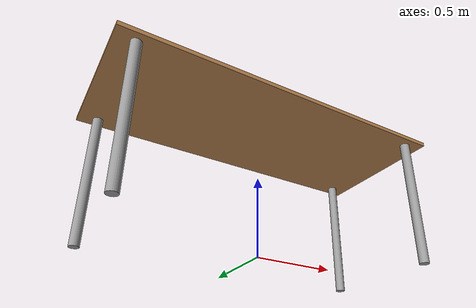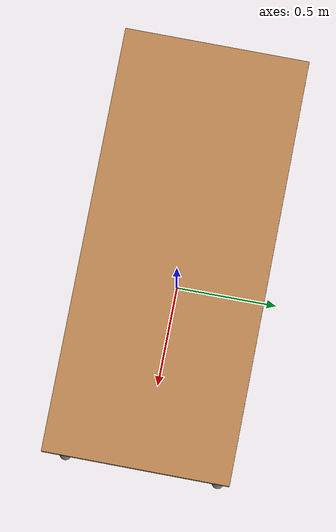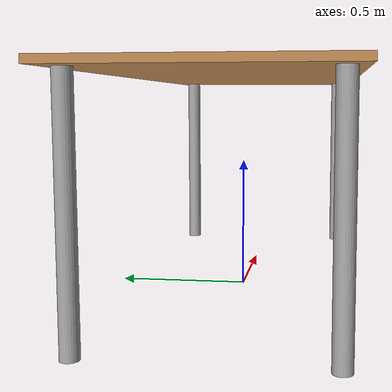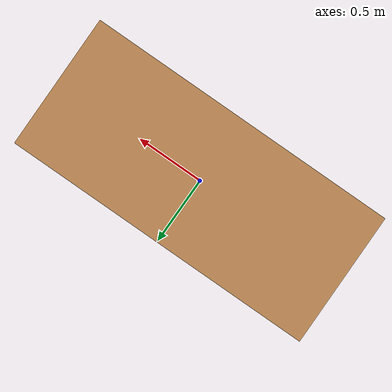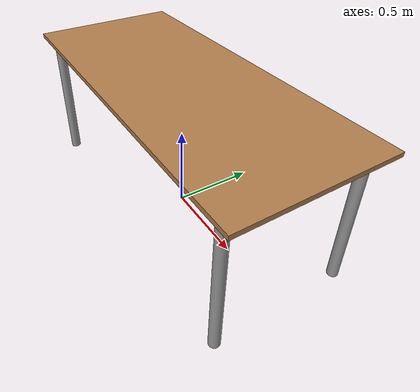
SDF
<?xml version='1.0'?>
<sdf version='1.7'>
  <model name='meeting_room_table'>
    <link name='link'>
      <self_collide>0</self_collide>
      <enable_wind>0</enable_wind>
      <kinematic>0</kinematic>
      <inertial>
        <inertia>
          <ixx>0</ixx>
          <ixy>0</ixy>
          <ixz>0</ixz>
          <iyy>0</iyy>
          <iyz>0</iyz>
          <izz>0</izz>
        </inertia>
        <mass>0</mass>
        <pose>0 0 0 0 -0 0</pose>
      </inertial>
      <pose>0 0 0 0 -0 0</pose>
      <gravity>1</gravity>
      <visual name='visual1'>
        <pose>0 0 0.84 0 -0 0</pose>
        <geometry>
          <box>
            <size>2.07185 0.892487 0.025485</size>
          </box>
        </geometry>
        <material>
          <script>
            <uri>file://media/materials/scripts/gazebo.material</uri>
            <name>Gazebo/Wood</name>
          </script>
          <shader type='pixel'>
            <normal_map>__default__</normal_map>
          </shader>
          <ambient>1 1 1 1</ambient>
          <diffuse>1 1 1 1</diffuse>
          <specular>0.2 0.2 0.2 1</specular>
          <emissive>0 0 0 1</emissive>
        </material>
        <transparency>0</transparency>
        <cast_shadows>1</cast_shadows>
      </visual>
      <visual name='front_right_leg'>
        <pose>0.92 -0.38 0.42 0 -0 0</pose>
        <geometry>
          <cylinder>
            <radius>0.0301928</radius>
            <length>0.822541</length>
          </cylinder>
        </geometry>
        <material>
          <script>
            <uri>file://media/materials/scripts/gazebo.material</uri>
            <name>Gazebo/Grey</name>
          </script>
          <shader type='pixel'>
            <normal_map>__default__</normal_map>
          </shader>
          <ambient>0.3 0.3 0.3 1</ambient>
          <diffuse>0.7 0.7 0.7 1</diffuse>
          <specular>0.01 0.01 0.01 1</specular>
          <emissive>0 0 0 1</emissive>
        </material>
        <transparency>0</transparency>
        <cast_shadows>1</cast_shadows>
      </visual>
      <visual name='front_left_leg'>
        <pose>0.92 0.38 0.42 0 -0 0</pose>
        <geometry>
          <cylinder>
            <radius>0.0301928</radius>
            <length>0.822541</length>
          </cylinder>
        </geometry>
        <material>
          <script>
            <uri>file://media/materials/scripts/gazebo.material</uri>
            <name>Gazebo/Grey</name>
          </script>
          <shader type='pixel'>
            <normal_map>__default__</normal_map>
          </shader>
          <ambient>0.3 0.3 0.3 1</ambient>
          <diffuse>0.7 0.7 0.7 1</diffuse>
          <specular>0.01 0.01 0.01 1</specular>
          <emissive>0 0 0 1</emissive>
        </material>
        <transparency>0</transparency>
        <cast_shadows>1</cast_shadows>
      </visual>
      <visual name='back_left_leg'>
        <pose>-0.92 0.38 0.42 0 -0 0</pose>
        <geometry>
          <cylinder>
            <radius>0.0301928</radius>
            <length>0.822541</length>
          </cylinder>
        </geometry>
        <material>
          <script>
            <uri>file://media/materials/scripts/gazebo.material</uri>
            <name>Gazebo/Grey</name>
          </script>
          <shader type='pixel'>
            <normal_map>__default__</normal_map>
          </shader>
          <ambient>0.3 0.3 0.3 1</ambient>
          <diffuse>0.7 0.7 0.7 1</diffuse>
          <specular>0.01 0.01 0.01 1</specular>
          <emissive>0 0 0 1</emissive>
        </material>
        <transparency>0</transparency>
        <cast_shadows>1</cast_shadows>
      </visual>
      <visual name='back_right_leg'>
        <pose>-0.92 -0.38 0.42 0 -0 0</pose>
        <geometry>
          <cylinder>
            <radius>0.0301928</radius>
            <length>0.822541</length>
          </cylinder>
        </geometry>
        <material>
          <script>
            <uri>file://media/materials/scripts/gazebo.material</uri>
            <name>Gazebo/Grey</name>
          </script>
          <shader type='pixel'>
            <normal_map>__default__</normal_map>
          </shader>
          <ambient>0.3 0.3 0.3 1</ambient>
          <diffuse>0.7 0.7 0.7 1</diffuse>
          <specular>0.01 0.01 0.01 1</specular>
          <emissive>0 0 0 1</emissive>
        </material>
        <transparency>0</transparency>
        <cast_shadows>1</cast_shadows>
      </visual>
      <collision name='surface'>
        <laser_retro>0</laser_retro>
        <max_contacts>10</max_contacts>
        <pose>0 0 0.84 0 -0 0</pose>
        <geometry>
          <box>
            <size>2.07185 0.892487 0.025485</size>
          </box>
        </geometry>
        <surface>
          <friction>
            <ode>
              <mu>0.6</mu>
              <mu2>0.6</mu2>
              <fdir1>0 0 0</fdir1>
              <slip1>0</slip1>
              <slip2>0</slip2>
            </ode>
            <torsional>
              <coefficient>1</coefficient>
              <patch_radius>0</patch_radius>
              <surface_radius>0</surface_radius>
              <use_patch_radius>1</use_patch_radius>
              <ode>
                <slip>0</slip>
              </ode>
            </torsional>
          </friction>
          <bounce>
            <restitution_coefficient>0</restitution_coefficient>
            <threshold>1e+06</threshold>
          </bounce>
          <contact>
            <collide_without_contact>0</collide_without_contact>
            <collide_without_contact_bitmask>1</collide_without_contact_bitmask>
            <collide_bitmask>1</collide_bitmask>
            <ode>
              <soft_cfm>0</soft_cfm>
              <soft_erp>0.2</soft_erp>
              <kp>1e+13</kp>
              <kd>1</kd>
              <max_vel>0.01</max_vel>
              <min_depth>0</min_depth>
            </ode>
            <bullet>
              <split_impulse>1</split_impulse>
              <split_impulse_penetration_threshold>-0.01</split_impulse_penetration_threshold>
              <soft_cfm>0</soft_cfm>
              <soft_erp>0.2</soft_erp>
              <kp>1e+13</kp>
              <kd>1</kd>
            </bullet>
          </contact>
        </surface>
      </collision>
      <collision name='front_left_leg'>
        <laser_retro>0</laser_retro>
        <max_contacts>10</max_contacts>
        <pose>0.92 0.38 0.42 0 -0 0</pose>
        <geometry>
          <cylinder>
            <radius>0.030193</radius>
            <length>0.822541</length>
          </cylinder>
        </geometry>
        <surface>
          <friction>
            <ode>
              <mu>1</mu>
              <mu2>1</mu2>
              <fdir1>0 0 0</fdir1>
              <slip1>0</slip1>
              <slip2>0</slip2>
            </ode>
            <torsional>
              <coefficient>1</coefficient>
              <patch_radius>0</patch_radius>
              <surface_radius>0</surface_radius>
              <use_patch_radius>1</use_patch_radius>
              <ode>
                <slip>0</slip>
              </ode>
            </torsional>
          </friction>
          <bounce>
            <restitution_coefficient>0</restitution_coefficient>
            <threshold>1e+06</threshold>
          </bounce>
          <contact>
            <collide_without_contact>0</collide_without_contact>
            <collide_without_contact_bitmask>1</collide_without_contact_bitmask>
            <collide_bitmask>1</collide_bitmask>
            <ode>
              <soft_cfm>0</soft_cfm>
              <soft_erp>0.2</soft_erp>
              <kp>1e+13</kp>
              <kd>1</kd>
              <max_vel>0.01</max_vel>
              <min_depth>0</min_depth>
            </ode>
            <bullet>
              <split_impulse>1</split_impulse>
              <split_impulse_penetration_threshold>-0.01</split_impulse_penetration_threshold>
              <soft_cfm>0</soft_cfm>
              <soft_erp>0.2</soft_erp>
              <kp>1e+13</kp>
              <kd>1</kd>
            </bullet>
          </contact>
        </surface>
      </collision>
      <collision name='front_right_leg'>
        <laser_retro>0</laser_retro>
        <max_contacts>10</max_contacts>
        <pose>0.92 -0.38 0.42 0 -0 0</pose>
        <geometry>
          <cylinder>
            <radius>0.030193</radius>
            <length>0.822541</length>
          </cylinder>
        </geometry>
        <surface>
          <friction>
            <ode>
              <mu>1</mu>
              <mu2>1</mu2>
              <fdir1>0 0 0</fdir1>
              <slip1>0</slip1>
              <slip2>0</slip2>
            </ode>
            <torsional>
              <coefficient>1</coefficient>
              <patch_radius>0</patch_radius>
              <surface_radius>0</surface_radius>
              <use_patch_radius>1</use_patch_radius>
              <ode>
                <slip>0</slip>
              </ode>
            </torsional>
          </friction>
          <bounce>
            <restitution_coefficient>0</restitution_coefficient>
            <threshold>1e+06</threshold>
          </bounce>
          <contact>
            <collide_without_contact>0</collide_without_contact>
            <collide_without_contact_bitmask>1</collide_without_contact_bitmask>
            <collide_bitmask>1</collide_bitmask>
            <ode>
              <soft_cfm>0</soft_cfm>
              <soft_erp>0.2</soft_erp>
              <kp>1e+13</kp>
              <kd>1</kd>
              <max_vel>0.01</max_vel>
              <min_depth>0</min_depth>
            </ode>
            <bullet>
              <split_impulse>1</split_impulse>
              <split_impulse_penetration_threshold>-0.01</split_impulse_penetration_threshold>
              <soft_cfm>0</soft_cfm>
              <soft_erp>0.2</soft_erp>
              <kp>1e+13</kp>
              <kd>1</kd>
            </bullet>
          </contact>
        </surface>
      </collision>
      <collision name='back_right_leg'>
        <laser_retro>0</laser_retro>
        <max_contacts>10</max_contacts>
        <pose>-0.92 -0.38 0.42 0 -0 0</pose>
        <geometry>
          <cylinder>
            <radius>0.030193</radius>
            <length>0.822541</length>
          </cylinder>
        </geometry>
        <surface>
          <friction>
            <ode>
              <mu>1</mu>
              <mu2>1</mu2>
              <fdir1>0 0 0</fdir1>
              <slip1>0</slip1>
              <slip2>0</slip2>
            </ode>
            <torsional>
              <coefficient>1</coefficient>
              <patch_radius>0</patch_radius>
              <surface_radius>0</surface_radius>
              <use_patch_radius>1</use_patch_radius>
              <ode>
                <slip>0</slip>
              </ode>
            </torsional>
          </friction>
          <bounce>
            <restitution_coefficient>0</restitution_coefficient>
            <threshold>1e+06</threshold>
          </bounce>
          <contact>
            <collide_without_contact>0</collide_without_contact>
            <collide_without_contact_bitmask>1</collide_without_contact_bitmask>
            <collide_bitmask>1</collide_bitmask>
            <ode>
              <soft_cfm>0</soft_cfm>
              <soft_erp>0.2</soft_erp>
              <kp>1e+13</kp>
              <kd>1</kd>
              <max_vel>0.01</max_vel>
              <min_depth>0</min_depth>
            </ode>
            <bullet>
              <split_impulse>1</split_impulse>
              <split_impulse_penetration_threshold>-0.01</split_impulse_penetration_threshold>
              <soft_cfm>0</soft_cfm>
              <soft_erp>0.2</soft_erp>
              <kp>1e+13</kp>
              <kd>1</kd>
            </bullet>
          </contact>
        </surface>
      </collision>
      <collision name='back_left_leg'>
        <laser_retro>0</laser_retro>
        <max_contacts>10</max_contacts>
        <pose>-0.92 0.38 0.42 0 -0 0</pose>
        <geometry>
          <cylinder>
            <radius>0.030193</radius>
            <length>0.822541</length>
          </cylinder>
        </geometry>
        <surface>
          <friction>
            <ode>
              <mu>1</mu>
              <mu2>1</mu2>
              <fdir1>0 0 0</fdir1>
              <slip1>0</slip1>
              <slip2>0</slip2>
            </ode>
            <torsional>
              <coefficient>1</coefficient>
              <patch_radius>0</patch_radius>
              <surface_radius>0</surface_radius>
              <use_patch_radius>1</use_patch_radius>
              <ode>
                <slip>0</slip>
              </ode>
            </torsional>
          </friction>
          <bounce>
            <restitution_coefficient>0</restitution_coefficient>
            <threshold>1e+06</threshold>
          </bounce>
          <contact>
            <collide_without_contact>0</collide_without_contact>
            <collide_without_contact_bitmask>1</collide_without_contact_bitmask>
            <collide_bitmask>1</collide_bitmask>
            <ode>
              <soft_cfm>0</soft_cfm>
              <soft_erp>0.2</soft_erp>
              <kp>1e+13</kp>
              <kd>1</kd>
              <max_vel>0.01</max_vel>
              <min_depth>0</min_depth>
            </ode>
            <bullet>
              <split_impulse>1</split_impulse>
              <split_impulse_penetration_threshold>-0.01</split_impulse_penetration_threshold>
              <soft_cfm>0</soft_cfm>
              <soft_erp>0.2</soft_erp>
              <kp>1e+13</kp>
              <kd>1</kd>
            </bullet>
          </contact>
        </surface>
      </collision>
    </link>
    <static>1</static>
    <allow_auto_disable>1</allow_auto_disable>
  </model>
</sdf>
